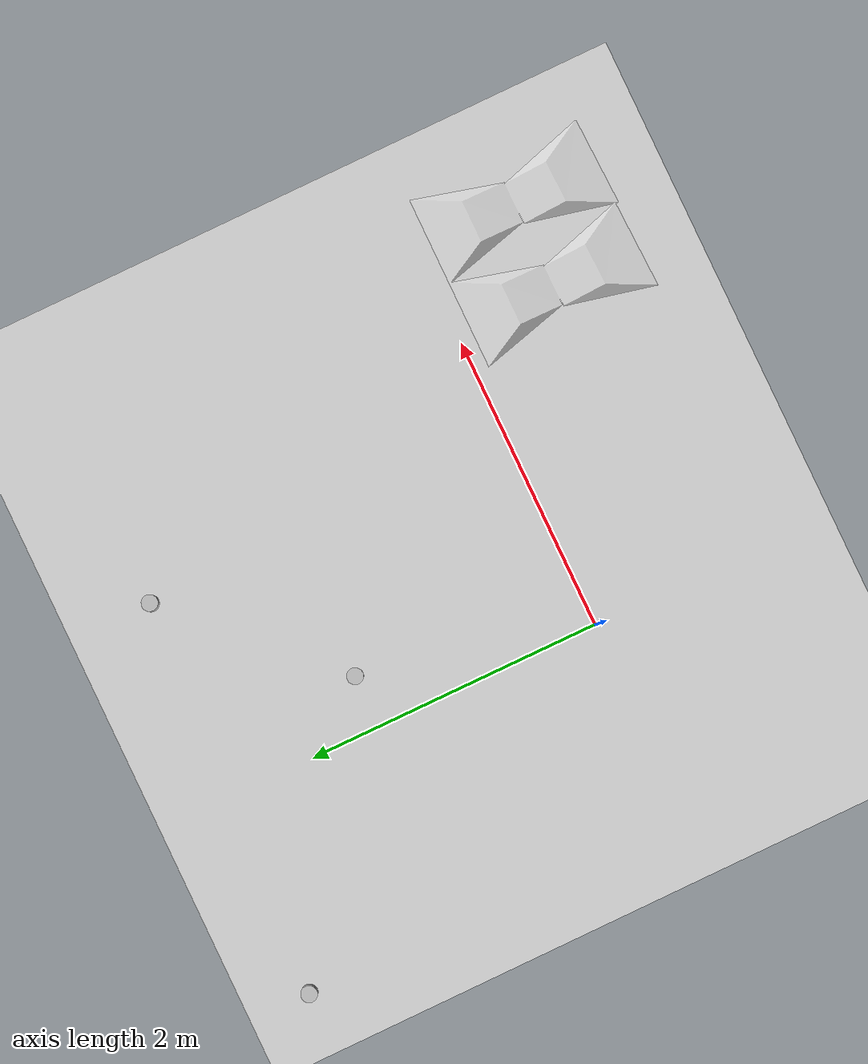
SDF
<sdf version="1.7">
 <world name="default">
  <light name="sun" type="directional">
   <pose>0 0 10 0 -0 0</pose>
   <diffuse>0.8 0.8 0.8 1</diffuse>
   <specular>0.2 0.2 0.2 1</specular>
   <attenuation>
    <range>1000</range>
    <constant>0.9</constant>
    <linear>0.01</linear>
    <quadratic>0.001</quadratic>
   </attenuation>
   <direction>-0.5 0.1 -0.9</direction>
   <spot><inner_angle>0</inner_angle><outer_angle>0</outer_angle><falloff>0</falloff></spot>
  </light>
  <model name="ground_plane">
   <static>1</static>
   <link name="link">
    <collision name="collision">
     <geometry><plane><normal>0 0 1</normal><size>100 100</size></plane></geometry>
     <surface><friction><ode><mu>100</mu><mu2>50</mu2></ode></friction></surface>
    </collision>
    <visual name="visual">
     <cast_shadows>0</cast_shadows>
     <geometry><plane><normal>0 0 1</normal><size>100 100</size></plane></geometry>
     <material>
      <script><uri>file://media/materials/scripts/gazebo.material</uri><name>Gazebo/Grey</name></script>
     </material>
    </visual>
   </link>
  </model>
  <gravity>0 0 -9.8</gravity>
  <magnetic_field>6e-06 2.3e-05 -4.2e-05</magnetic_field>
  <atmosphere type="adiabatic"/>
  <physics type="ode">
   <max_step_size>0.001</max_step_size>
   <real_time_factor>1</real_time_factor>
   <real_time_update_rate>1000</real_time_update_rate>
  </physics>
  <scene><ambient>0.4 0.4 0.4 1</ambient><background>0.7 0.7 0.7 1</background><shadows>1</shadows></scene>
  <audio><device>default</device></audio>
  <spherical_coordinates>
   <surface_model>EARTH_WGS84</surface_model>
   <latitude_deg>0</latitude_deg>
   <longitude_deg>0</longitude_deg>
   <elevation>0</elevation>
   <heading_deg>0</heading_deg>
  </spherical_coordinates>
  <model name="beer">
   <link name="link">
    <pose>0 0 0.115 0 -0 0</pose>
    <inertial>
     <mass>0.39</mass>
     <inertia><ixx>0.00058</ixx><ixy>0</ixy><ixz>0</ixz><iyy>0.00058</iyy><iyz>0</iyz><izz>0.00019</izz></inertia>
    </inertial>
    <collision name="collision">
     <geometry><cylinder><radius>0.055</radius><length>0.23</length></cylinder></geometry>
    </collision>
    <visual name="visual">
     <geometry><cylinder><radius>0.055</radius><length>0.23</length></cylinder></geometry>
     <material>
      <script>
       <uri>model://beer/materials/scripts</uri>
       <uri>model://beer/materials/textures</uri>
       <name>Beer/Diffuse</name>
      </script>
     </material>
    </visual>
   </link>
   <pose>-1.3412 2.66319 0 0 -0 -5e-06</pose>
  </model>
  <model name="beer_0">
   <link name="link">
    <pose>0 0 0.115 0 -0 0</pose>
    <inertial>
     <mass>0.39</mass>
     <inertia><ixx>0.00058</ixx><ixy>0</ixy><ixz>0</ixz><iyy>0.00058</iyy><iyz>0</iyz><izz>0.00019</izz></inertia>
    </inertial>
    <collision name="collision">
     <geometry><cylinder><radius>0.055</radius><length>0.23</length></cylinder></geometry>
    </collision>
    <visual name="visual">
     <geometry><cylinder><radius>0.055</radius><length>0.23</length></cylinder></geometry>
     <material>
      <script>
       <uri>model://beer/materials/scripts</uri>
       <uri>model://beer/materials/textures</uri>
       <name>Beer/Diffuse</name>
      </script>
     </material>
    </visual>
   </link>
   <pose>0.361893 1.53097 0 0 0 -4e-06</pose>
  </model>
  <model name="beer_1">
   <link name="link">
    <pose>0 0 0.115 0 -0 0</pose>
    <inertial>
     <mass>0.39</mass>
     <inertia><ixx>0.00058</ixx><ixy>0</ixy><ixz>0</ixz><iyy>0.00058</iyy><iyz>0</iyz><izz>0.00019</izz></inertia>
    </inertial>
    <collision name="collision">
     <geometry><cylinder><radius>0.055</radius><length>0.23</length></cylinder></geometry>
    </collision>
    <visual name="visual">
     <geometry><cylinder><radius>0.055</radius><length>0.23</length></cylinder></geometry>
     <material>
      <script>
       <uri>model://beer/materials/scripts</uri>
       <uri>model://beer/materials/textures</uri>
       <name>Beer/Diffuse</name>
      </script>
     </material>
    </visual>
   </link>
   <pose>1.34502 2.5141 0 -0 -0 -3e-06</pose>
  </model>
  <model name="rampa">
   <static>1</static>
   <link name="link">
    <collision name="collision">
     <geometry><mesh><uri>model://rampa/mesh/rampa.dae</uri></mesh></geometry>
    </collision>
    <visual name="visual">
     <geometry><mesh><uri>model://rampa/mesh/rampa.dae</uri></mesh></geometry>
     <material>
      <script>
       <uri>model://rampa/materials/scripts</uri>
       <uri>model://rampa/materials/textures</uri>
       <name>rampa/rampa</name>
      </script>
     </material>
    </visual>
   </link>
   <pose>2.38135 -0.693515 0 0 -0 0</pose>
  </model>
 </world>
</sdf>
